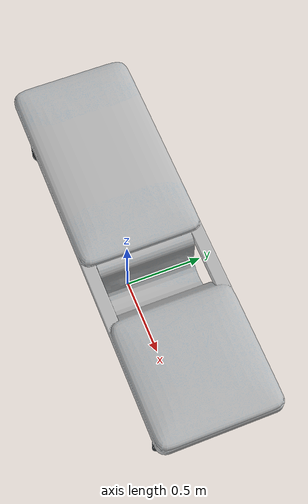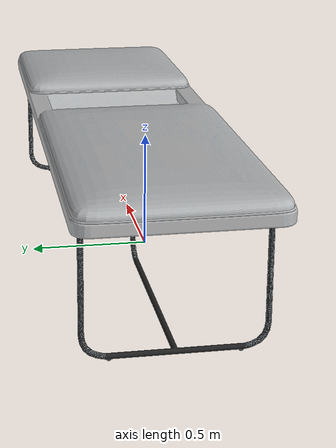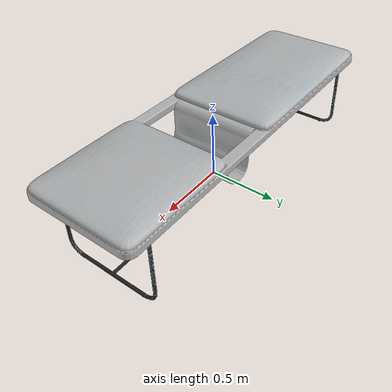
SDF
<?xml version='1.0'?>
<sdf version='1.6'>
  <model name='bench_2'>
    <link name='link_36'>
      <pose frame=''>0.007975 -0.173271 0 0 -0 0</pose>
       <visual name='visual'>
        <pose frame=''>0 0 0 0 -0 0</pose>
        <geometry>
          <mesh>
            <uri>model://bench_2/meshes/bench2.dae</uri>
            <scale>0.014 0.014 0.014</scale>
          </mesh>
        </geometry>

        <cast_shadows>1</cast_shadows>
        <transparency>0</transparency>
      </visual>
      <collision name='collision'>
        <laser_retro>0</laser_retro>
        <max_contacts>10</max_contacts>
        <pose frame=''>0 0 0 0 -0 0</pose>
        <geometry>
          <mesh>
            <uri>model://bench_2/meshes/bench2.dae</uri>
            <scale>0.014 0.014 0.014</scale>
          </mesh>
        </geometry>
       </collision>
    </link>
    <static>1</static>
    <allow_auto_disable>1</allow_auto_disable>
  </model>
</sdf>
